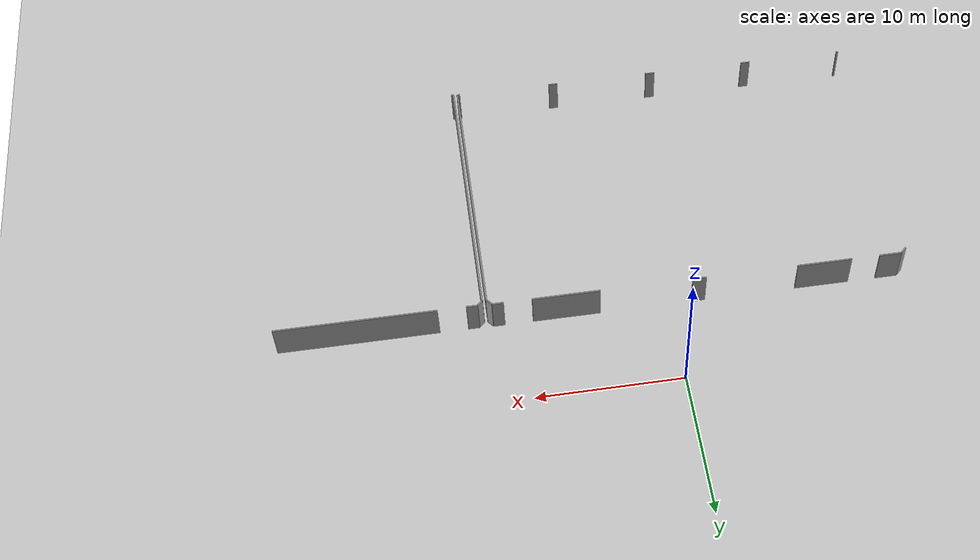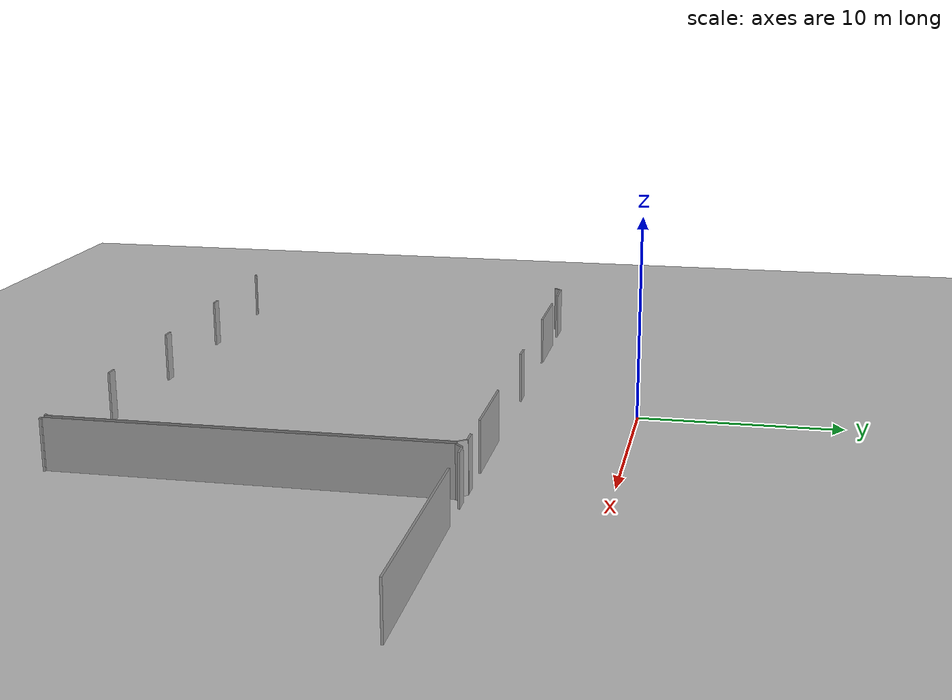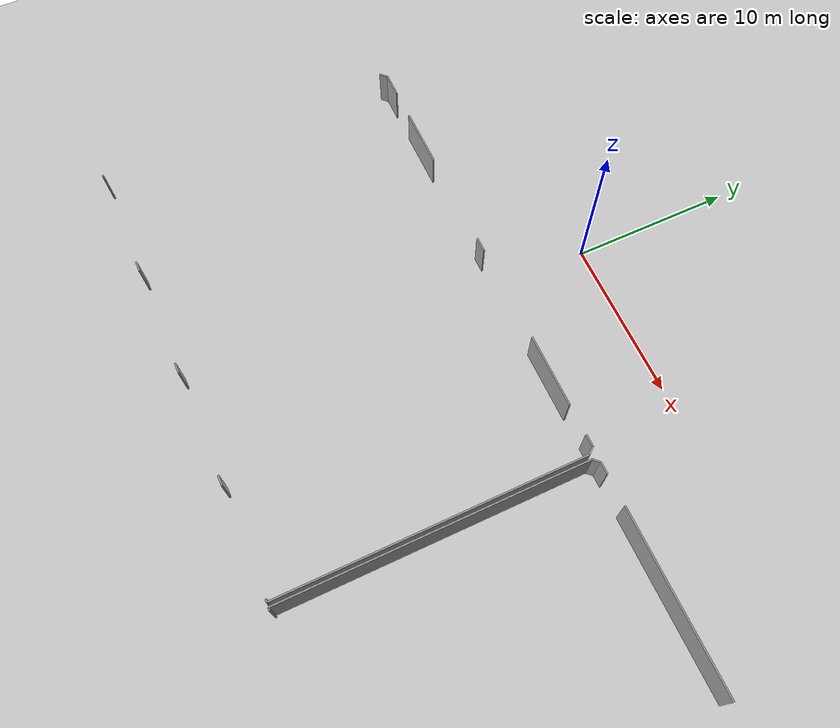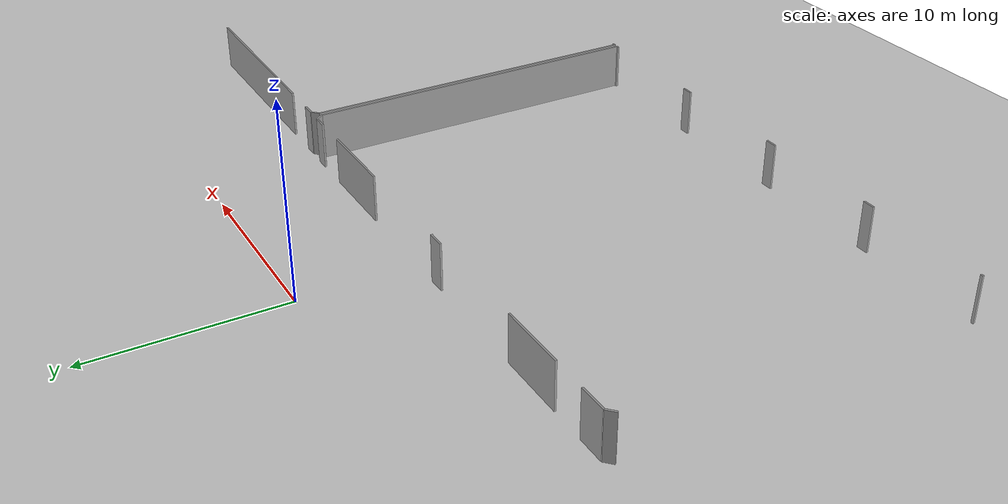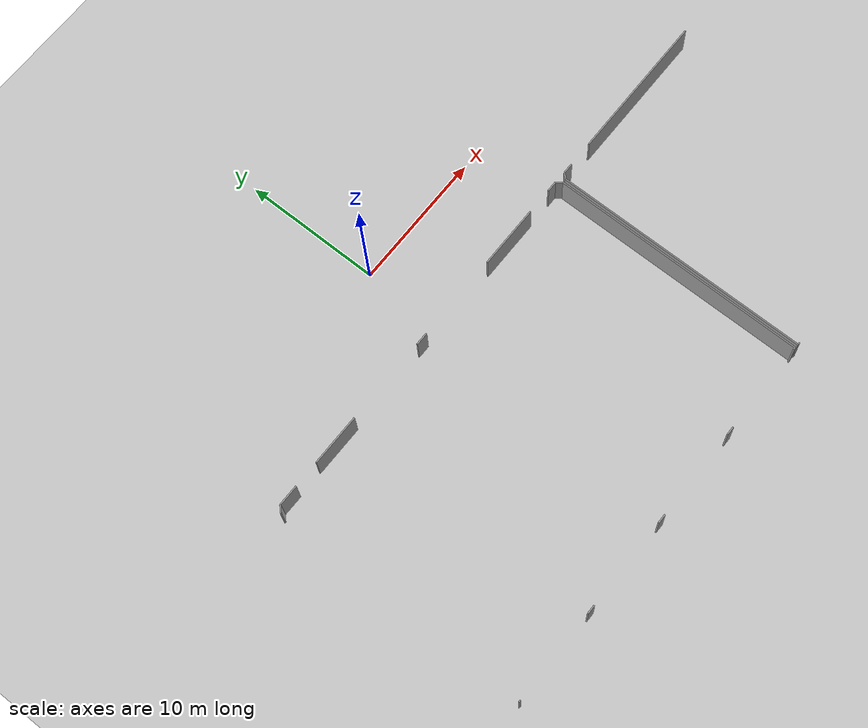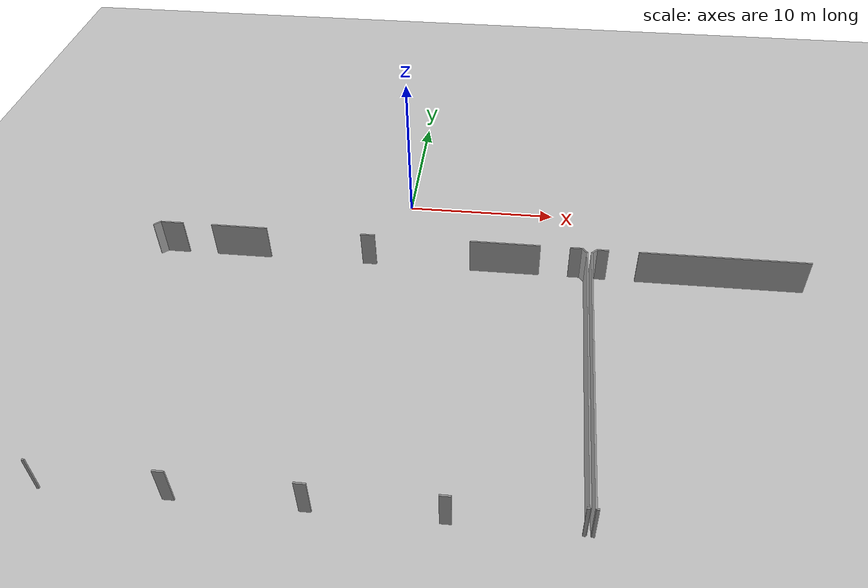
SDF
<sdf version="1.6">
 <world name="default">
  <model name="ground_plane">
   <static>1</static>
   <link name="link">
    <collision name="collision">
     <geometry><plane><normal>0 0 1</normal><size>100 100</size></plane></geometry>
     <surface><friction><ode><mu>100</mu><mu2>50</mu2></ode></friction></surface>
    </collision>
    <visual name="visual">
     <cast_shadows>0</cast_shadows>
     <geometry><plane><normal>0 0 1</normal><size>100 100</size></plane></geometry>
     <material>
      <script><uri>file://media/materials/scripts/gazebo.material</uri><name>Gazebo/Grey</name></script>
     </material>
    </visual>
   </link>
  </model>
  <model name="0510032218_A-40">
   <static>1</static>
   <link name="Wall_299">
    <collision name="Wall_299_Collision">
     <geometry><box><size>0.17008853489 0.1 2.5</size></box></geometry>
     <pose>0.0850442674452 0 1.25 0 0 0</pose>
    </collision>
    <visual name="Wall_299_Visual">
     <pose>0.0850442674452 0 1.25 0 0 0</pose>
     <geometry><box><size>0.17008853489 0.1 2.5</size></box></geometry>
     <material>
      <script><uri>file://media/materials/scripts/gazebo.material</uri><name>Gazebo/Grey</name></script>
      <ambient>1 1 1 1</ambient>
     </material>
    </visual>
    <pose>87.5221908419 -74.9547171009 0 0 0 3.14159265359</pose>
   </link>
   <link name="Wall_300">
    <collision name="Wall_300_Collision">
     <geometry><box><size>18.6993304351 0.1 2.5</size></box></geometry>
     <pose>9.34966521753 0 1.25 0 0 0</pose>
    </collision>
    <visual name="Wall_300_Visual">
     <pose>9.34966521753 0 1.25 0 0 0</pose>
     <geometry><box><size>18.6993304351 0.1 2.5</size></box></geometry>
     <material>
      <script><uri>file://media/materials/scripts/gazebo.material</uri><name>Gazebo/Grey</name></script>
      <ambient>1 1 1 1</ambient>
     </material>
    </visual>
    <pose>87.352102307 -74.9547171009 0 0 0 1.57079632679</pose>
   </link>
   <link name="Wall_301">
    <collision name="Wall_301_Collision">
     <geometry><box><size>0.482252846725 0.1 2.5</size></box></geometry>
     <pose>0.241126423363 0 1.25 0 0 0</pose>
    </collision>
    <visual name="Wall_301_Visual">
     <pose>0.241126423363 0 1.25 0 0 0</pose>
     <geometry><box><size>0.482252846725 0.1 2.5</size></box></geometry>
     <material>
      <script><uri>file://media/materials/scripts/gazebo.material</uri><name>Gazebo/Grey</name></script>
      <ambient>1 1 1 1</ambient>
     </material>
    </visual>
    <pose>87.352102307 -56.2553866658 0 0 0 0.788934348174</pose>
   </link>
   <link name="Wall_302">
    <collision name="Wall_302_Collision">
     <geometry><box><size>0.751055120109 0.1 2.5</size></box></geometry>
     <pose>0.375527560055 0 1.25 0 0 0</pose>
    </collision>
    <visual name="Wall_302_Visual">
     <pose>0.375527560055 0 1.25 0 0 0</pose>
     <geometry><box><size>0.751055120109 0.1 2.5</size></box></geometry>
     <material>
      <script><uri>file://media/materials/scripts/gazebo.material</uri><name>Gazebo/Grey</name></script>
      <ambient>1 1 1 1</ambient>
     </material>
    </visual>
    <pose>87.6918985815 -55.9131786882 0 0 0 0.0</pose>
   </link>
   <link name="Wall_303">
    <collision name="Wall_303_Collision">
     <geometry><box><size>10.7894519722 0.1 2.5</size></box></geometry>
     <pose>5.3947259861 0 1.25 0 0 0</pose>
    </collision>
    <visual name="Wall_303_Visual">
     <pose>5.3947259861 0 1.25 0 0 0</pose>
     <geometry><box><size>10.7894519722 0.1 2.5</size></box></geometry>
     <material>
      <script><uri>file://media/materials/scripts/gazebo.material</uri><name>Gazebo/Grey</name></script>
      <ambient>1 1 1 1</ambient>
     </material>
    </visual>
    <pose>90.3394408657 -55.9131786882 0 0 0 0.0</pose>
   </link>
   <link name="Wall_306">
    <collision name="Wall_306_Collision">
     <geometry><box><size>0.176562053756 0.1 2.5</size></box></geometry>
     <pose>0.0882810268778 0 1.25 0 0 0</pose>
    </collision>
    <visual name="Wall_306_Visual">
     <pose>0.0882810268778 0 1.25 0 0 0</pose>
     <geometry><box><size>0.176562053756 0.1 2.5</size></box></geometry>
     <material>
      <script><uri>file://media/materials/scripts/gazebo.material</uri><name>Gazebo/Grey</name></script>
      <ambient>1 1 1 1</ambient>
     </material>
    </visual>
    <pose>87.0739948593 -74.9355504078 0 0 0 3.14159265359</pose>
   </link>
   <link name="Wall_307">
    <collision name="Wall_307_Collision">
     <geometry><box><size>0.629073715609 0.1 2.5</size></box></geometry>
     <pose>0.314536857805 0 1.25 0 0 0</pose>
    </collision>
    <visual name="Wall_307_Visual">
     <pose>0.314536857805 0 1.25 0 0 0</pose>
     <geometry><box><size>0.629073715609 0.1 2.5</size></box></geometry>
     <material>
      <script><uri>file://media/materials/scripts/gazebo.material</uri><name>Gazebo/Grey</name></script>
      <ambient>1 1 1 1</ambient>
     </material>
    </visual>
    <pose>80.352070574 -74.9355504078 0 0 0 3.14159265359</pose>
   </link>
   <link name="Wall_308">
    <collision name="Wall_308_Collision">
     <geometry><box><size>0.662329832133 0.1 2.5</size></box></geometry>
     <pose>0.331164916066 0 1.25 0 0 0</pose>
    </collision>
    <visual name="Wall_308_Visual">
     <pose>0.331164916066 0 1.25 0 0 0</pose>
     <geometry><box><size>0.662329832133 0.1 2.5</size></box></geometry>
     <material>
      <script><uri>file://media/materials/scripts/gazebo.material</uri><name>Gazebo/Grey</name></script>
      <ambient>1 1 1 1</ambient>
     </material>
    </visual>
    <pose>73.1556754355 -74.9355504078 0 0 0 3.14159265359</pose>
   </link>
   <link name="Wall_309">
    <collision name="Wall_309_Collision">
     <geometry><box><size>0.651159838797 0.1 2.5</size></box></geometry>
     <pose>0.325579919398 0 1.25 0 0 0</pose>
    </collision>
    <visual name="Wall_309_Visual">
     <pose>0.325579919398 0 1.25 0 0 0</pose>
     <geometry><box><size>0.651159838797 0.1 2.5</size></box></geometry>
     <material>
      <script><uri>file://media/materials/scripts/gazebo.material</uri><name>Gazebo/Grey</name></script>
      <ambient>1 1 1 1</ambient>
     </material>
    </visual>
    <pose>65.9701964269 -74.9355504078 0 0 0 3.14159265359</pose>
   </link>
   <link name="Wall_310">
    <collision name="Wall_310_Collision">
     <geometry><box><size>0.141909688065 0.1 2.5</size></box></geometry>
     <pose>0.0709548440326 0 1.25 0 0 0</pose>
    </collision>
    <visual name="Wall_310_Visual">
     <pose>0.0709548440326 0 1.25 0 0 0</pose>
     <geometry><box><size>0.141909688065 0.1 2.5</size></box></geometry>
     <material>
      <script><uri>file://media/materials/scripts/gazebo.material</uri><name>Gazebo/Grey</name></script>
      <ambient>1 1 1 1</ambient>
     </material>
    </visual>
    <pose>58.7146510964 -74.9355504078 0 0 0 3.14159265359</pose>
   </link>
   <link name="Wall_313">
    <collision name="Wall_313_Collision">
     <geometry><box><size>0.539242808473 0.1 2.5</size></box></geometry>
     <pose>0.269621404236 0 1.25 0 0 0</pose>
    </collision>
    <visual name="Wall_313_Visual">
     <pose>0.269621404236 0 1.25 0 0 0</pose>
     <geometry><box><size>0.539242808473 0.1 2.5</size></box></geometry>
     <material>
      <script><uri>file://media/materials/scripts/gazebo.material</uri><name>Gazebo/Grey</name></script>
      <ambient>1 1 1 1</ambient>
     </material>
    </visual>
    <pose>58.5727414083 -56.2499286009 0 0 0 0.767254657607</pose>
   </link>
   <link name="Wall_314">
    <collision name="Wall_314_Collision">
     <geometry><box><size>1.50680671469 0.1 2.5</size></box></geometry>
     <pose>0.753403357345 0 1.25 0 0 0</pose>
    </collision>
    <visual name="Wall_314_Visual">
     <pose>0.753403357345 0 1.25 0 0 0</pose>
     <geometry><box><size>1.50680671469 0.1 2.5</size></box></geometry>
     <material>
      <script><uri>file://media/materials/scripts/gazebo.material</uri><name>Gazebo/Grey</name></script>
      <ambient>1 1 1 1</ambient>
     </material>
    </visual>
    <pose>58.9608986767 -55.8756068924 0 0 0 0.0</pose>
   </link>
   <link name="Wall_315">
    <collision name="Wall_315_Collision">
     <geometry><box><size>3.72227334751 0.1 2.5</size></box></geometry>
     <pose>1.86113667375 0 1.25 0 0 0</pose>
    </collision>
    <visual name="Wall_315_Visual">
     <pose>1.86113667375 0 1.25 0 0 0</pose>
     <geometry><box><size>3.72227334751 0.1 2.5</size></box></geometry>
     <material>
      <script><uri>file://media/materials/scripts/gazebo.material</uri><name>Gazebo/Grey</name></script>
      <ambient>1 1 1 1</ambient>
     </material>
    </visual>
    <pose>62.389071177 -55.8756068924 0 0 0 0.0</pose>
   </link>
   <link name="Wall_316">
    <collision name="Wall_316_Collision">
     <geometry><box><size>0.938152508489 0.1 2.5</size></box></geometry>
     <pose>0.469076254244 0 1.25 0 0 0</pose>
    </collision>
    <visual name="Wall_316_Visual">
     <pose>0.469076254244 0 1.25 0 0 0</pose>
     <geometry><box><size>0.938152508489 0.1 2.5</size></box></geometry>
     <material>
      <script><uri>file://media/materials/scripts/gazebo.material</uri><name>Gazebo/Grey</name></script>
      <ambient>1 1 1 1</ambient>
     </material>
    </visual>
    <pose>72.3499127344 -55.8756068924 0 0 0 0.0</pose>
   </link>
   <link name="Wall_317">
    <collision name="Wall_317_Collision">
     <geometry><box><size>4.56370386824 0.1 2.5</size></box></geometry>
     <pose>2.28185193412 0 1.25 0 0 0</pose>
    </collision>
    <visual name="Wall_317_Visual">
     <pose>2.28185193412 0 1.25 0 0 0</pose>
     <geometry><box><size>4.56370386824 0.1 2.5</size></box></geometry>
     <material>
      <script><uri>file://media/materials/scripts/gazebo.material</uri><name>Gazebo/Grey</name></script>
      <ambient>1 1 1 1</ambient>
     </material>
    </visual>
    <pose>79.5243486815 -55.8756068924 0 0 0 0.0</pose>
   </link>
   <link name="Wall_318">
    <collision name="Wall_318_Collision">
     <geometry><box><size>0.774283628979 0.1 2.5</size></box></geometry>
     <pose>0.387141814489 0 1.25 0 0 0</pose>
    </collision>
    <visual name="Wall_318_Visual">
     <pose>0.387141814489 0 1.25 0 0 0</pose>
     <geometry><box><size>0.774283628979 0.1 2.5</size></box></geometry>
     <material>
      <script><uri>file://media/materials/scripts/gazebo.material</uri><name>Gazebo/Grey</name></script>
      <ambient>1 1 1 1</ambient>
     </material>
    </visual>
    <pose>85.9729889252 -55.8756068924 0 0 0 0.0</pose>
   </link>
   <link name="Wall_319">
    <collision name="Wall_319_Collision">
     <geometry><box><size>0.505303198331 0.1 2.5</size></box></geometry>
     <pose>0.252651599165 0 1.25 0 0 0</pose>
    </collision>
    <visual name="Wall_319_Visual">
     <pose>0.252651599165 0 1.25 0 0 0</pose>
     <geometry><box><size>0.505303198331 0.1 2.5</size></box></geometry>
     <material>
      <script><uri>file://media/materials/scripts/gazebo.material</uri><name>Gazebo/Grey</name></script>
      <ambient>1 1 1 1</ambient>
     </material>
    </visual>
    <pose>86.7472725542 -55.8756068924 0 0 0 -0.891818454256</pose>
   </link>
   <link name="Wall_320">
    <collision name="Wall_320_Collision">
     <geometry><box><size>18.6667113405 0.1 2.5</size></box></geometry>
     <pose>9.33335567024 0 1.25 0 0 0</pose>
    </collision>
    <visual name="Wall_320_Visual">
     <pose>9.33335567024 0 1.25 0 0 0</pose>
     <geometry><box><size>18.6667113405 0.1 2.5</size></box></geometry>
     <material>
      <script><uri>file://media/materials/scripts/gazebo.material</uri><name>Gazebo/Grey</name></script>
      <ambient>1 1 1 1</ambient>
     </material>
    </visual>
    <pose>87.0646019103 -56.2688414305 0 0 0 -1.57029313428</pose>
   </link>
   <pose>-74.8 49.7517929109 0 0 0 0</pose>
  </model>
 </world>
</sdf>
